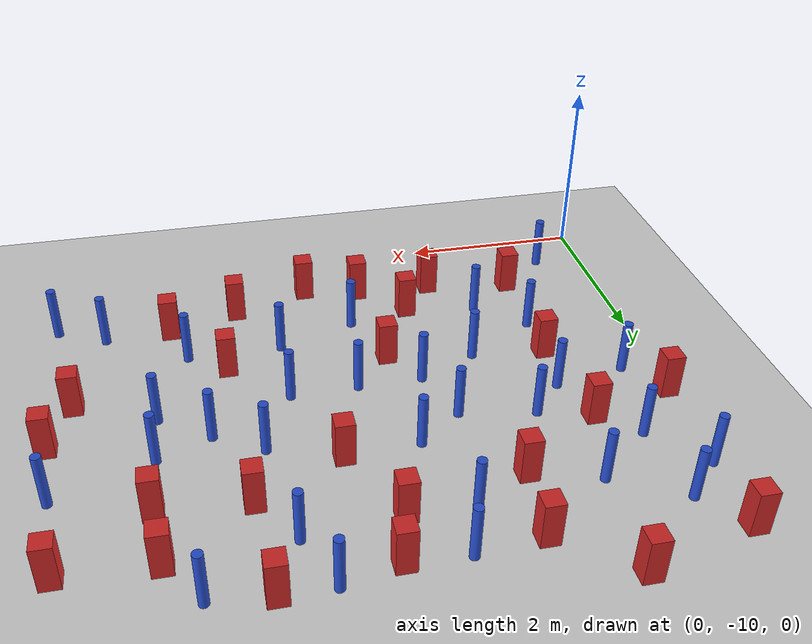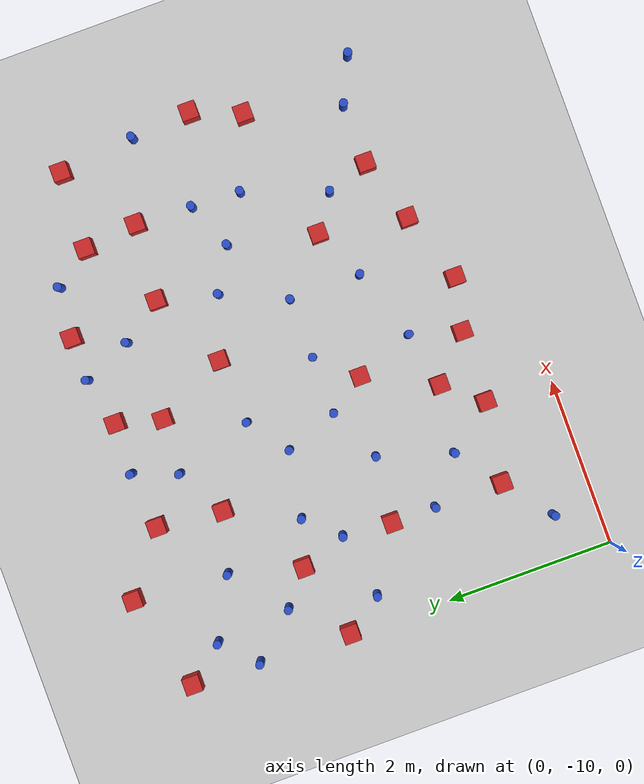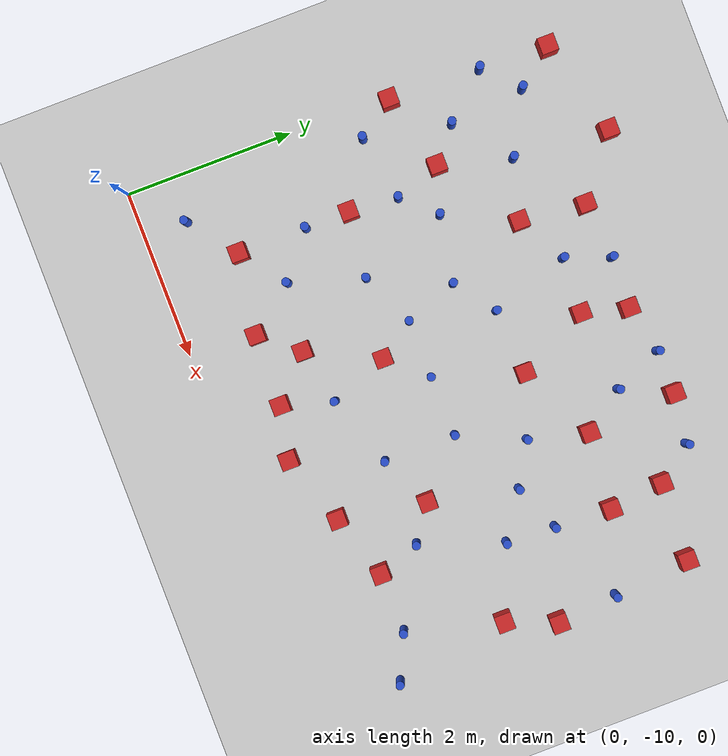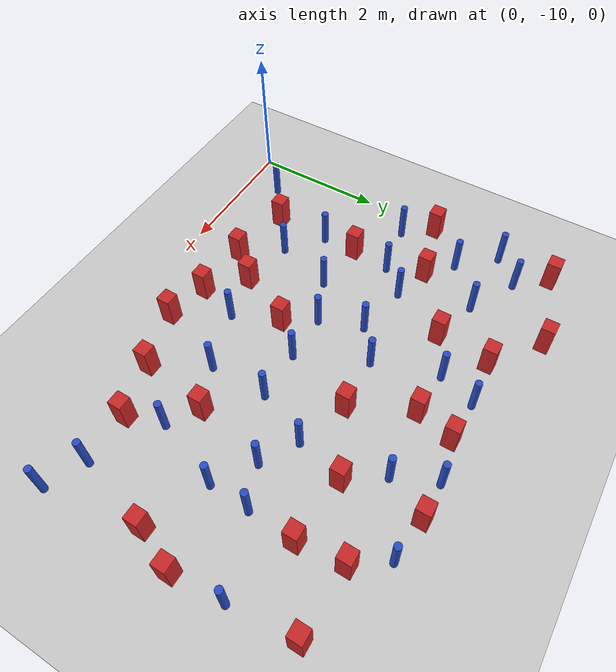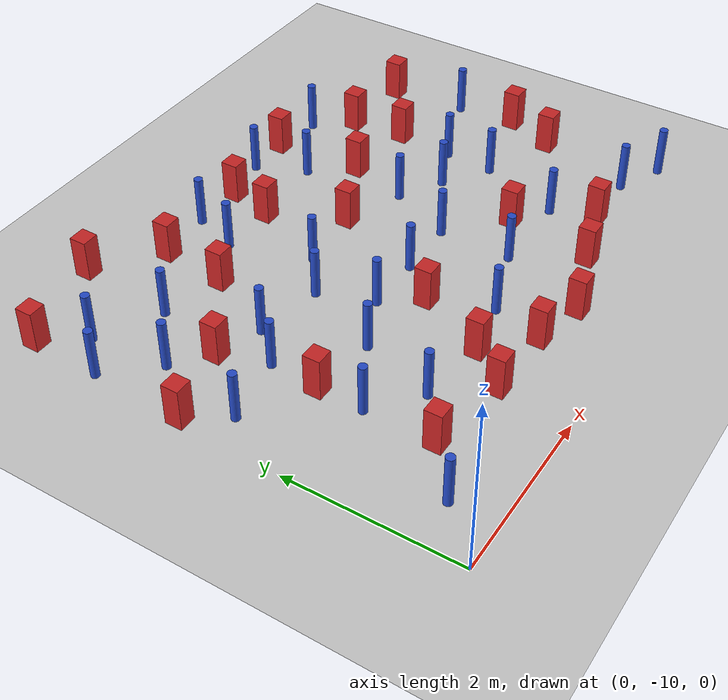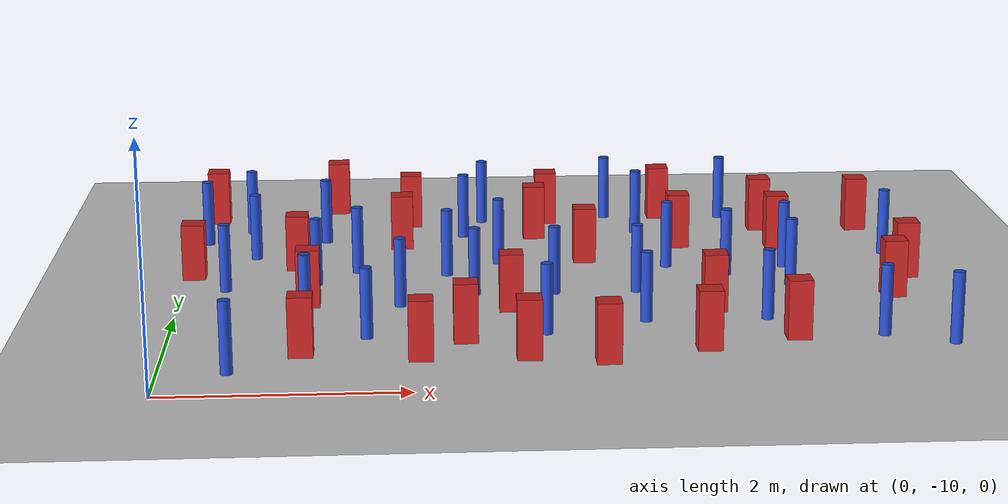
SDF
<sdf version="1.6">
 <world name="default">
  <model name="ground_plane">
   <static>1</static>
   <link name="link">
    <collision name="collision">
     <geometry><plane><normal>0 0 1</normal><size>100 100</size></plane></geometry>
     <surface><friction><ode><mu>100</mu><mu2>50</mu2></ode></friction></surface>
    </collision>
    <visual name="visual">
     <cast_shadows>0</cast_shadows>
     <geometry><plane><normal>0 0 1</normal><size>100 100</size></plane></geometry>
     <material>
      <ambient>1.0 1.0 1.0 1.0</ambient>
      <diffuse>0.8 0.8 0.8 1.0</diffuse>
      <specular>0.01 0.01 0.01 1.000000</specular>
     </material>
    </visual>
   </link>
  </model>
  <model name="pole_obstacle7">
   <static>true</static>
   <pose>3.22150232477 -7.4769451547 7.38925637345e-09 -8.47170692798e-08 1.24976765033e-08 -1.74513093019e-07</pose>
   <link name="link">
    <pose>0 0 0.3 0 -0 0</pose>
    <inertial>
     <mass>1</mass>
     <inertia><ixx>0.145833</ixx><ixy>0</ixy><ixz>0</ixz><iyy>0.145833</iyy><iyz>0</iyz><izz>0.125</izz></inertia>
    </inertial>
    <collision name="collision">
     <geometry><cylinder><radius>0.05</radius><length>.6</length></cylinder></geometry>
    </collision>
    <visual name="visual">
     <geometry><cylinder><radius>0.05</radius><length>.6</length></cylinder></geometry>
     <material>
      <script><name>Gazebo/Blue</name><uri>file://media/materials/scripts/gazebo.material</uri></script>
     </material>
    </visual>
   </link>
  </model>
  <model name="square_post_obstacle5">
   <static>true</static>
   <pose>3.1453970164 -5.60545074428 1.91545236811e-07 -7.35059704564e-06 1.12565212e-07 2.39332434364e-05</pose>
   <link name="link">
    <pose>0 0 0.25 0 -0 0</pose>
    <inertial>
     <mass>100</mass>
     <inertia>
      <ixx>0.166667</ixx>
      <ixy>0</ixy>
      <ixz>0</ixz>
      <iyy>0.166667</iyy>
      <iyz>0</iyz>
      <izz>0.166667</izz>
     </inertia>
    </inertial>
    <collision name="collision"><geometry><box><size>.2 .2 .5</size></box></geometry></collision>
    <visual name="visual">
     <geometry><box><size>.2 .2 .5</size></box></geometry>
     <material>
      <script><name>Gazebo/Red</name><uri>file://media/materials/scripts/gazebo.material</uri></script>
     </material>
    </visual>
   </link>
  </model>
  <model name="square_post_obstacle7">
   <static>true</static>
   <pose>2.4204341195 -8.75031236134 1.91545236811e-07 -7.35059704564e-06 1.12565212e-07 2.39332434364e-05</pose>
   <link name="link">
    <pose>0 0 0.25 0 -0 0</pose>
    <inertial>
     <mass>100</mass>
     <inertia>
      <ixx>0.166667</ixx>
      <ixy>0</ixy>
      <ixz>0</ixz>
      <iyy>0.166667</iyy>
      <iyz>0</iyz>
      <izz>0.166667</izz>
     </inertia>
    </inertial>
    <collision name="collision"><geometry><box><size>.2 .2 .5</size></box></geometry></collision>
    <visual name="visual">
     <geometry><box><size>.2 .2 .5</size></box></geometry>
     <material>
      <script><name>Gazebo/Red</name><uri>file://media/materials/scripts/gazebo.material</uri></script>
     </material>
    </visual>
   </link>
  </model>
  <model name="square_post_obstacle8">
   <static>true</static>
   <pose>6.14715143079 -7.69136076271 1.91545236811e-07 -7.35059704564e-06 1.12565212e-07 2.39332434364e-05</pose>
   <link name="link">
    <pose>0 0 0.25 0 -0 0</pose>
    <inertial>
     <mass>100</mass>
     <inertia>
      <ixx>0.166667</ixx>
      <ixy>0</ixy>
      <ixz>0</ixz>
      <iyy>0.166667</iyy>
      <iyz>0</iyz>
      <izz>0.166667</izz>
     </inertia>
    </inertial>
    <collision name="collision"><geometry><box><size>.2 .2 .5</size></box></geometry></collision>
    <visual name="visual">
     <geometry><box><size>.2 .2 .5</size></box></geometry>
     <material>
      <script><name>Gazebo/Red</name><uri>file://media/materials/scripts/gazebo.material</uri></script>
     </material>
    </visual>
   </link>
  </model>
  <model name="pole_obstacle14">
   <static>true</static>
   <pose>3.93608415349 -8.31823323013 7.38925637345e-09 -8.47170692793e-08 1.24976764408e-08 -1.74513093041e-07</pose>
   <link name="link">
    <pose>0 0 0.3 0 -0 0</pose>
    <inertial>
     <mass>1</mass>
     <inertia><ixx>0.145833</ixx><ixy>0</ixy><ixz>0</ixz><iyy>0.145833</iyy><iyz>0</iyz><izz>0.125</izz></inertia>
    </inertial>
    <collision name="collision">
     <geometry><cylinder><radius>0.05</radius><length>.6</length></cylinder></geometry>
    </collision>
    <visual name="visual">
     <geometry><cylinder><radius>0.05</radius><length>.6</length></cylinder></geometry>
     <material>
      <script><name>Gazebo/Blue</name><uri>file://media/materials/scripts/gazebo.material</uri></script>
     </material>
    </visual>
   </link>
  </model>
  <model name="square_post_obstacle19">
   <static>true</static>
   <pose>1.90659724652 -5.89209735666 1.91545236811e-07 -7.35059704564e-06 1.12565212e-07 2.39332434364e-05</pose>
   <link name="link">
    <pose>0 0 0.25 0 -0 0</pose>
    <inertial>
     <mass>100</mass>
     <inertia>
      <ixx>0.166667</ixx>
      <ixy>0</ixy>
      <ixz>0</ixz>
      <iyy>0.166667</iyy>
      <iyz>0</iyz>
      <izz>0.166667</izz>
     </inertia>
    </inertial>
    <collision name="collision"><geometry><box><size>.2 .2 .5</size></box></geometry></collision>
    <visual name="visual">
     <geometry><box><size>.2 .2 .5</size></box></geometry>
     <material>
      <script><name>Gazebo/Red</name><uri>file://media/materials/scripts/gazebo.material</uri></script>
     </material>
    </visual>
   </link>
  </model>
  <model name="square_post_obstacle21">
   <static>true</static>
   <pose>6.23103900334 -5.47775100667 1.91545236811e-07 -7.35059704564e-06 1.12565212e-07 2.39332434364e-05</pose>
   <link name="link">
    <pose>0 0 0.25 0 -0 0</pose>
    <inertial>
     <mass>100</mass>
     <inertia>
      <ixx>0.166667</ixx>
      <ixy>0</ixy>
      <ixz>0</ixz>
      <iyy>0.166667</iyy>
      <iyz>0</iyz>
      <izz>0.166667</izz>
     </inertia>
    </inertial>
    <collision name="collision"><geometry><box><size>.2 .2 .5</size></box></geometry></collision>
    <visual name="visual">
     <geometry><box><size>.2 .2 .5</size></box></geometry>
     <material>
      <script><name>Gazebo/Red</name><uri>file://media/materials/scripts/gazebo.material</uri></script>
     </material>
    </visual>
   </link>
  </model>
  <model name="square_post_obstacle27">
   <static>true</static>
   <pose>1.10197446139 -9.03624897904 1.91545236811e-07 -7.35059704564e-06 1.12565212e-07 2.39332434364e-05</pose>
   <link name="link">
    <pose>0 0 0.25 0 -0 0</pose>
    <inertial>
     <mass>100</mass>
     <inertia>
      <ixx>0.166667</ixx>
      <ixy>0</ixy>
      <ixz>0</ixz>
      <iyy>0.166667</iyy>
      <iyz>0</iyz>
      <izz>0.166667</izz>
     </inertia>
    </inertial>
    <collision name="collision"><geometry><box><size>.2 .2 .5</size></box></geometry></collision>
    <visual name="visual">
     <geometry><box><size>.2 .2 .5</size></box></geometry>
     <material>
      <script><name>Gazebo/Red</name><uri>file://media/materials/scripts/gazebo.material</uri></script>
     </material>
    </visual>
   </link>
  </model>
  <model name="square_post_obstacle29">
   <static>true</static>
   <pose>5.1266658337 -8.82335839244 1.91545236811e-07 -7.35059704564e-06 1.12565212e-07 2.39332434364e-05</pose>
   <link name="link">
    <pose>0 0 0.25 0 -0 0</pose>
    <inertial>
     <mass>100</mass>
     <inertia>
      <ixx>0.166667</ixx>
      <ixy>0</ixy>
      <ixz>0</ixz>
      <iyy>0.166667</iyy>
      <iyz>0</iyz>
      <izz>0.166667</izz>
     </inertia>
    </inertial>
    <collision name="collision"><geometry><box><size>.2 .2 .5</size></box></geometry></collision>
    <visual name="visual">
     <geometry><box><size>.2 .2 .5</size></box></geometry>
     <material>
      <script><name>Gazebo/Red</name><uri>file://media/materials/scripts/gazebo.material</uri></script>
     </material>
    </visual>
   </link>
  </model>
  <model name="square_post_obstacle36">
   <static>true</static>
   <pose>2.91149031498 -9.20887463234 1.91545236811e-07 -7.35059704564e-06 1.12565212e-07 2.39332434364e-05</pose>
   <link name="link">
    <pose>0 0 0.25 0 -0 0</pose>
    <inertial>
     <mass>100</mass>
     <inertia>
      <ixx>0.166667</ixx>
      <ixy>0</ixy>
      <ixz>0</ixz>
      <iyy>0.166667</iyy>
      <iyz>0</iyz>
      <izz>0.166667</izz>
     </inertia>
    </inertial>
    <collision name="collision"><geometry><box><size>.2 .2 .5</size></box></geometry></collision>
    <visual name="visual">
     <geometry><box><size>.2 .2 .5</size></box></geometry>
     <material>
      <script><name>Gazebo/Red</name><uri>file://media/materials/scripts/gazebo.material</uri></script>
     </material>
    </visual>
   </link>
  </model>
  <model name="pole_obstacle51">
   <static>true</static>
   <pose>1.2014925531 -5.69253445816 7.38925637345e-09 -8.47170692799e-08 1.24976765033e-08 -1.74513093018e-07</pose>
   <link name="link">
    <pose>0 0 0.3 0 -0 0</pose>
    <inertial>
     <mass>1</mass>
     <inertia><ixx>0.145833</ixx><ixy>0</ixy><ixz>0</ixz><iyy>0.145833</iyy><iyz>0</iyz><izz>0.125</izz></inertia>
    </inertial>
    <collision name="collision">
     <geometry><cylinder><radius>0.05</radius><length>.6</length></cylinder></geometry>
    </collision>
    <visual name="visual">
     <geometry><cylinder><radius>0.05</radius><length>.6</length></cylinder></geometry>
     <material>
      <script><name>Gazebo/Blue</name><uri>file://media/materials/scripts/gazebo.material</uri></script>
     </material>
    </visual>
   </link>
  </model>
  <model name="square_post_obstacle42">
   <static>true</static>
   <pose>1.10773407201 -7.68403534709 1.91545236811e-07 -7.35059704564e-06 1.12565212e-07 2.39332434364e-05</pose>
   <link name="link">
    <pose>0 0 0.25 0 -0 0</pose>
    <inertial>
     <mass>100</mass>
     <inertia>
      <ixx>0.166667</ixx>
      <ixy>0</ixy>
      <ixz>0</ixz>
      <iyy>0.166667</iyy>
      <iyz>0</iyz>
      <izz>0.166667</izz>
     </inertia>
    </inertial>
    <collision name="collision"><geometry><box><size>.2 .2 .5</size></box></geometry></collision>
    <visual name="visual">
     <geometry><box><size>.2 .2 .5</size></box></geometry>
     <material>
      <script><name>Gazebo/Red</name><uri>file://media/materials/scripts/gazebo.material</uri></script>
     </material>
    </visual>
   </link>
  </model>
  <model name="pole_obstacle58">
   <static>true</static>
   <pose>1.89139466694 -7.7704782445 7.38925637345e-09 -8.47170692799e-08 1.24976765033e-08 -1.74513093018e-07</pose>
   <link name="link">
    <pose>0 0 0.3 0 -0 0</pose>
    <inertial>
     <mass>1</mass>
     <inertia><ixx>0.145833</ixx><ixy>0</ixy><ixz>0</ixz><iyy>0.145833</iyy><iyz>0</iyz><izz>0.125</izz></inertia>
    </inertial>
    <collision name="collision">
     <geometry><cylinder><radius>0.05</radius><length>.6</length></cylinder></geometry>
    </collision>
    <visual name="visual">
     <geometry><cylinder><radius>0.05</radius><length>.6</length></cylinder></geometry>
     <material>
      <script><name>Gazebo/Blue</name><uri>file://media/materials/scripts/gazebo.material</uri></script>
     </material>
    </visual>
   </link>
  </model>
  <model name="square_post_obstacle48">
   <static>true</static>
   <pose>3.55897779533 -6.44860546713 1.91545236811e-07 -7.35059704564e-06 1.12565212e-07 2.39332434364e-05</pose>
   <link name="link">
    <pose>0 0 0.25 0 -0 0</pose>
    <inertial>
     <mass>100</mass>
     <inertia>
      <ixx>0.166667</ixx>
      <ixy>0</ixy>
      <ixz>0</ixz>
      <iyy>0.166667</iyy>
      <iyz>0</iyz>
      <izz>0.166667</izz>
     </inertia>
    </inertial>
    <collision name="collision"><geometry><box><size>.2 .2 .5</size></box></geometry></collision>
    <visual name="visual">
     <geometry><box><size>.2 .2 .5</size></box></geometry>
     <material>
      <script><name>Gazebo/Red</name><uri>file://media/materials/scripts/gazebo.material</uri></script>
     </material>
    </visual>
   </link>
  </model>
  <model name="square_post_obstacle58">
   <static>true</static>
   <pose>2.05472331848 -9.18506082507 1.91545236811e-07 -7.35059704564e-06 1.12565212e-07 2.39332434364e-05</pose>
   <link name="link">
    <pose>0 0 0.25 0 -0 0</pose>
    <inertial>
     <mass>100</mass>
     <inertia>
      <ixx>0.166667</ixx>
      <ixy>0</ixy>
      <ixz>0</ixz>
      <iyy>0.166667</iyy>
      <iyz>0</iyz>
      <izz>0.166667</izz>
     </inertia>
    </inertial>
    <collision name="collision"><geometry><box><size>.2 .2 .5</size></box></geometry></collision>
    <visual name="visual">
     <geometry><box><size>.2 .2 .5</size></box></geometry>
     <material>
      <script><name>Gazebo/Red</name><uri>file://media/materials/scripts/gazebo.material</uri></script>
     </material>
    </visual>
   </link>
  </model>
  <model name="square_post_obstacle73">
   <static>true</static>
   <pose>6.38053899687 -7.10698713867 1.91545236811e-07 -7.35059704564e-06 1.12565212e-07 2.39332434364e-05</pose>
   <link name="link">
    <pose>0 0 0.25 0 -0 0</pose>
    <inertial>
     <mass>100</mass>
     <inertia>
      <ixx>0.166667</ixx>
      <ixy>0</ixy>
      <ixz>0</ixz>
      <iyy>0.166667</iyy>
      <iyz>0</iyz>
      <izz>0.166667</izz>
     </inertia>
    </inertial>
    <collision name="collision"><geometry><box><size>.2 .2 .5</size></box></geometry></collision>
    <visual name="visual">
     <geometry><box><size>.2 .2 .5</size></box></geometry>
     <material>
      <script><name>Gazebo/Red</name><uri>file://media/materials/scripts/gazebo.material</uri></script>
     </material>
    </visual>
   </link>
  </model>
  <model name="pole_obstacle86">
   <static>true</static>
   <pose>5.33952448104 -6.75982605139 7.38925637345e-09 -8.47170692796e-08 1.24976764786e-08 -1.74513093032e-07</pose>
   <link name="link">
    <pose>0 0 0.3 0 -0 0</pose>
    <inertial>
     <mass>1</mass>
     <inertia><ixx>0.145833</ixx><ixy>0</ixy><ixz>0</ixz><iyy>0.145833</iyy><iyz>0</iyz><izz>0.125</izz></inertia>
    </inertial>
    <collision name="collision">
     <geometry><cylinder><radius>0.05</radius><length>.6</length></cylinder></geometry>
    </collision>
    <visual name="visual">
     <geometry><cylinder><radius>0.05</radius><length>.6</length></cylinder></geometry>
     <material>
      <script><name>Gazebo/Blue</name><uri>file://media/materials/scripts/gazebo.material</uri></script>
     </material>
    </visual>
   </link>
  </model>
  <model name="square_post_obstacle74">
   <static>true</static>
   <pose>1.99338762028 -5.10920825828 1.91545236811e-07 -7.35059704564e-06 1.12565212e-07 2.39332434364e-05</pose>
   <link name="link">
    <pose>0 0 0.25 0 -0 0</pose>
    <inertial>
     <mass>100</mass>
     <inertia>
      <ixx>0.166667</ixx>
      <ixy>0</ixy>
      <ixz>0</ixz>
      <iyy>0.166667</iyy>
      <iyz>0</iyz>
      <izz>0.166667</izz>
     </inertia>
    </inertial>
    <collision name="collision"><geometry><box><size>.2 .2 .5</size></box></geometry></collision>
    <visual name="visual">
     <geometry><box><size>.2 .2 .5</size></box></geometry>
     <material>
      <script><name>Gazebo/Red</name><uri>file://media/materials/scripts/gazebo.material</uri></script>
     </material>
    </visual>
   </link>
  </model>
  <model name="pole_obstacle87">
   <static>true</static>
   <pose>3.86860398969 -4.93310898947 7.38925637345e-09 -8.47170692798e-08 1.24976765033e-08 -1.74513093019e-07</pose>
   <link name="link">
    <pose>0 0 0.3 0 -0 0</pose>
    <inertial>
     <mass>1</mass>
     <inertia><ixx>0.145833</ixx><ixy>0</ixy><ixz>0</ixz><iyy>0.145833</iyy><iyz>0</iyz><izz>0.125</izz></inertia>
    </inertial>
    <collision name="collision">
     <geometry><cylinder><radius>0.05</radius><length>.6</length></cylinder></geometry>
    </collision>
    <visual name="visual">
     <geometry><cylinder><radius>0.05</radius><length>.6</length></cylinder></geometry>
     <material>
      <script><name>Gazebo/Blue</name><uri>file://media/materials/scripts/gazebo.material</uri></script>
     </material>
    </visual>
   </link>
  </model>
  <model name="square_post_obstacle76">
   <static>true</static>
   <pose>4.36586534339 -9.06294899991 1.91545236811e-07 -7.35059704564e-06 1.12565212e-07 2.39332434364e-05</pose>
   <link name="link">
    <pose>0 0 0.25 0 -0 0</pose>
    <inertial>
     <mass>100</mass>
     <inertia>
      <ixx>0.166667</ixx>
      <ixy>0</ixy>
      <ixz>0</ixz>
      <iyy>0.166667</iyy>
      <iyz>0</iyz>
      <izz>0.166667</izz>
     </inertia>
    </inertial>
    <collision name="collision"><geometry><box><size>.2 .2 .5</size></box></geometry></collision>
    <visual name="visual">
     <geometry><box><size>.2 .2 .5</size></box></geometry>
     <material>
      <script><name>Gazebo/Red</name><uri>file://media/materials/scripts/gazebo.material</uri></script>
     </material>
    </visual>
   </link>
  </model>
  <model name="square_post_obstacle84">
   <static>true</static>
   <pose>4.46515629286 -6.00393810836 1.91545236811e-07 -7.35059704564e-06 1.12565212e-07 2.39332434364e-05</pose>
   <link name="link">
    <pose>0 0 0.25 0 -0 0</pose>
    <inertial>
     <mass>100</mass>
     <inertia>
      <ixx>0.166667</ixx>
      <ixy>0</ixy>
      <ixz>0</ixz>
      <iyy>0.166667</iyy>
      <iyz>0</iyz>
      <izz>0.166667</izz>
     </inertia>
    </inertial>
    <collision name="collision"><geometry><box><size>.2 .2 .5</size></box></geometry></collision>
    <visual name="visual">
     <geometry><box><size>.2 .2 .5</size></box></geometry>
     <material>
      <script><name>Gazebo/Red</name><uri>file://media/materials/scripts/gazebo.material</uri></script>
     </material>
    </visual>
   </link>
  </model>
  <model name="pole_obstacle98">
   <static>true</static>
   <pose>4.28411899778 -6.7007746295 7.38925637345e-09 -8.47170692796e-08 1.24976764786e-08 -1.74513093032e-07</pose>
   <link name="link">
    <pose>0 0 0.3 0 -0 0</pose>
    <inertial>
     <mass>1</mass>
     <inertia><ixx>0.145833</ixx><ixy>0</ixy><ixz>0</ixz><iyy>0.145833</iyy><iyz>0</iyz><izz>0.125</izz></inertia>
    </inertial>
    <collision name="collision">
     <geometry><cylinder><radius>0.05</radius><length>.6</length></cylinder></geometry>
    </collision>
    <visual name="visual">
     <geometry><cylinder><radius>0.05</radius><length>.6</length></cylinder></geometry>
     <material>
      <script><name>Gazebo/Blue</name><uri>file://media/materials/scripts/gazebo.material</uri></script>
     </material>
    </visual>
   </link>
  </model>
  <model name="square_post_obstacle92">
   <static>true</static>
   <pose>5.37465435075 -6.08280300153 1.91545236811e-07 -7.35059704564e-06 1.12565212e-07 2.39332434364e-05</pose>
   <link name="link">
    <pose>0 0 0.25 0 -0 0</pose>
    <inertial>
     <mass>100</mass>
     <inertia>
      <ixx>0.166667</ixx>
      <ixy>0</ixy>
      <ixz>0</ixz>
      <iyy>0.166667</iyy>
      <iyz>0</iyz>
      <izz>0.166667</izz>
     </inertia>
    </inertial>
    <collision name="collision"><geometry><box><size>.2 .2 .5</size></box></geometry></collision>
    <visual name="visual">
     <geometry><box><size>.2 .2 .5</size></box></geometry>
     <material>
      <script><name>Gazebo/Red</name><uri>file://media/materials/scripts/gazebo.material</uri></script>
     </material>
    </visual>
   </link>
  </model>
  <model name="pole_obstacle101">
   <static>true</static>
   <pose>2.67383488345 -5.03966563027 7.38925637345e-09 -8.47170692798e-08 1.24976765033e-08 -1.74513093019e-07</pose>
   <link name="link">
    <pose>0 0 0.3 0 -0 0</pose>
    <inertial>
     <mass>1</mass>
     <inertia><ixx>0.145833</ixx><ixy>0</ixy><ixz>0</ixz><iyy>0.145833</iyy><iyz>0</iyz><izz>0.125</izz></inertia>
    </inertial>
    <collision name="collision">
     <geometry><cylinder><radius>0.05</radius><length>.6</length></cylinder></geometry>
    </collision>
    <visual name="visual">
     <geometry><cylinder><radius>0.05</radius><length>.6</length></cylinder></geometry>
     <material>
      <script><name>Gazebo/Blue</name><uri>file://media/materials/scripts/gazebo.material</uri></script>
     </material>
    </visual>
   </link>
  </model>
  <model name="square_post_obstacle98">
   <static>true</static>
   <pose>0.97011975441 -6.54683266928 1.91545236811e-07 -7.35059704564e-06 1.12565212e-07 2.39332434364e-05</pose>
   <link name="link">
    <pose>0 0 0.25 0 -0 0</pose>
    <inertial>
     <mass>100</mass>
     <inertia>
      <ixx>0.166667</ixx>
      <ixy>0</ixy>
      <ixz>0</ixz>
      <iyy>0.166667</iyy>
      <iyz>0</iyz>
      <izz>0.166667</izz>
     </inertia>
    </inertial>
    <collision name="collision"><geometry><box><size>.2 .2 .5</size></box></geometry></collision>
    <visual name="visual">
     <geometry><box><size>.2 .2 .5</size></box></geometry>
     <material>
      <script><name>Gazebo/Red</name><uri>file://media/materials/scripts/gazebo.material</uri></script>
     </material>
    </visual>
   </link>
  </model>
  <model name="pole_obstacle104">
   <static>true</static>
   <pose>2.53005761738 -7.4826832355 7.38925637345e-09 -8.47170692798e-08 1.24976765033e-08 -1.74513093019e-07</pose>
   <link name="link">
    <pose>0 0 0.3 0 -0 0</pose>
    <inertial>
     <mass>1</mass>
     <inertia><ixx>0.145833</ixx><ixy>0</ixy><ixz>0</ixz><iyy>0.145833</iyy><iyz>0</iyz><izz>0.125</izz></inertia>
    </inertial>
    <collision name="collision">
     <geometry><cylinder><radius>0.05</radius><length>.6</length></cylinder></geometry>
    </collision>
    <visual name="visual">
     <geometry><cylinder><radius>0.05</radius><length>.6</length></cylinder></geometry>
     <material>
      <script><name>Gazebo/Blue</name><uri>file://media/materials/scripts/gazebo.material</uri></script>
     </material>
    </visual>
   </link>
  </model>
  <model name="pole_obstacle111">
   <static>true</static>
   <pose>5.31007476936 -7.34636833657 7.38925637345e-09 -8.47170692796e-08 1.24976764786e-08 -1.74513093032e-07</pose>
   <link name="link">
    <pose>0 0 0.3 0 -0 0</pose>
    <inertial>
     <mass>1</mass>
     <inertia><ixx>0.145833</ixx><ixy>0</ixy><ixz>0</ixz><iyy>0.145833</iyy><iyz>0</iyz><izz>0.125</izz></inertia>
    </inertial>
    <collision name="collision">
     <geometry><cylinder><radius>0.05</radius><length>.6</length></cylinder></geometry>
    </collision>
    <visual name="visual">
     <geometry><cylinder><radius>0.05</radius><length>.6</length></cylinder></geometry>
     <material>
      <script><name>Gazebo/Blue</name><uri>file://media/materials/scripts/gazebo.material</uri></script>
     </material>
    </visual>
   </link>
  </model>
  <model name="pole_obstacle122">
   <static>true</static>
   <pose>6.32603078409 -6.38709073287 7.38925637345e-09 -8.47170692796e-08 1.24976764786e-08 -1.74513093032e-07</pose>
   <link name="link">
    <pose>0 0 0.3 0 -0 0</pose>
    <inertial>
     <mass>1</mass>
     <inertia><ixx>0.145833</ixx><ixy>0</ixy><ixz>0</ixz><iyy>0.145833</iyy><iyz>0</iyz><izz>0.125</izz></inertia>
    </inertial>
    <collision name="collision">
     <geometry><cylinder><radius>0.05</radius><length>.6</length></cylinder></geometry>
    </collision>
    <visual name="visual">
     <geometry><cylinder><radius>0.05</radius><length>.6</length></cylinder></geometry>
     <material>
      <script><name>Gazebo/Blue</name><uri>file://media/materials/scripts/gazebo.material</uri></script>
     </material>
    </visual>
   </link>
  </model>
  <model name="pole_obstacle127">
   <static>true</static>
   <pose>2.77607070131 -6.50180046961 7.38925637345e-09 -8.47170692798e-08 1.24976765033e-08 -1.74513093019e-07</pose>
   <link name="link">
    <pose>0 0 0.3 0 -0 0</pose>
    <inertial>
     <mass>1</mass>
     <inertia><ixx>0.145833</ixx><ixy>0</ixy><ixz>0</ixz><iyy>0.145833</iyy><iyz>0</iyz><izz>0.125</izz></inertia>
    </inertial>
    <collision name="collision">
     <geometry><cylinder><radius>0.05</radius><length>.6</length></cylinder></geometry>
    </collision>
    <visual name="visual">
     <geometry><cylinder><radius>0.05</radius><length>.6</length></cylinder></geometry>
     <material>
      <script><name>Gazebo/Blue</name><uri>file://media/materials/scripts/gazebo.material</uri></script>
     </material>
    </visual>
   </link>
  </model>
  <model name="square_post_obstacle130">
   <static>true</static>
   <pose>5.30758098268 -5.43641401174 1.91545236811e-07 -7.35059704564e-06 1.12565212e-07 2.39332434364e-05</pose>
   <link name="link">
    <pose>0 0 0.25 0 -0 0</pose>
    <inertial>
     <mass>100</mass>
     <inertia>
      <ixx>0.166667</ixx>
      <ixy>0</ixy>
      <ixz>0</ixz>
      <iyy>0.166667</iyy>
      <iyz>0</iyz>
      <izz>0.166667</izz>
     </inertia>
    </inertial>
    <collision name="collision"><geometry><box><size>.2 .2 .5</size></box></geometry></collision>
    <visual name="visual">
     <geometry><box><size>.2 .2 .5</size></box></geometry>
     <material>
      <script><name>Gazebo/Red</name><uri>file://media/materials/scripts/gazebo.material</uri></script>
     </material>
    </visual>
   </link>
  </model>
  <model name="square_post_obstacle132">
   <static>true</static>
   <pose>0.0677655520172 -6.79392266435 1.91545236811e-07 -7.35059704564e-06 1.12565212e-07 2.39332434364e-05</pose>
   <link name="link">
    <pose>0 0 0.25 0 -0 0</pose>
    <inertial>
     <mass>100</mass>
     <inertia>
      <ixx>0.166667</ixx>
      <ixy>0</ixy>
      <ixz>0</ixz>
      <iyy>0.166667</iyy>
      <iyz>0</iyz>
      <izz>0.166667</izz>
     </inertia>
    </inertial>
    <collision name="collision"><geometry><box><size>.2 .2 .5</size></box></geometry></collision>
    <visual name="visual">
     <geometry><box><size>.2 .2 .5</size></box></geometry>
     <material>
      <script><name>Gazebo/Red</name><uri>file://media/materials/scripts/gazebo.material</uri></script>
     </material>
    </visual>
   </link>
  </model>
  <model name="pole_obstacle133">
   <static>true</static>
   <pose>0.580041480333 -6.21644432047 7.38925637345e-09 -8.471706928e-08 1.24976765086e-08 -1.74513093015e-07</pose>
   <link name="link">
    <pose>0 0 0.3 0 -0 0</pose>
    <inertial>
     <mass>1</mass>
     <inertia><ixx>0.145833</ixx><ixy>0</ixy><ixz>0</ixz><iyy>0.145833</iyy><iyz>0</iyz><izz>0.125</izz></inertia>
    </inertial>
    <collision name="collision">
     <geometry><cylinder><radius>0.05</radius><length>.6</length></cylinder></geometry>
    </collision>
    <visual name="visual">
     <geometry><cylinder><radius>0.05</radius><length>.6</length></cylinder></geometry>
     <material>
      <script><name>Gazebo/Blue</name><uri>file://media/materials/scripts/gazebo.material</uri></script>
     </material>
    </visual>
   </link>
  </model>
  <model name="pole_obstacle137">
   <static>true</static>
   <pose>0.37330045939 -7.23284706584 7.38925637345e-09 -8.471706928e-08 1.24976765079e-08 -1.74513093015e-07</pose>
   <link name="link">
    <pose>0 0 0.3 0 -0 0</pose>
    <inertial>
     <mass>1</mass>
     <inertia><ixx>0.145833</ixx><ixy>0</ixy><ixz>0</ixz><iyy>0.145833</iyy><iyz>0</iyz><izz>0.125</izz></inertia>
    </inertial>
    <collision name="collision">
     <geometry><cylinder><radius>0.05</radius><length>.6</length></cylinder></geometry>
    </collision>
    <visual name="visual">
     <geometry><cylinder><radius>0.05</radius><length>.6</length></cylinder></geometry>
     <material>
      <script><name>Gazebo/Blue</name><uri>file://media/materials/scripts/gazebo.material</uri></script>
     </material>
    </visual>
   </link>
  </model>
  <model name="pole_obstacle142">
   <static>true</static>
   <pose>5.84503327211 -8.8150768171 7.38925637345e-09 -8.471706928e-08 1.24976765081e-08 -1.74513093015e-07</pose>
   <link name="link">
    <pose>0 0 0.3 0 -0 0</pose>
    <inertial>
     <mass>1</mass>
     <inertia><ixx>0.145833</ixx><ixy>0</ixy><ixz>0</ixz><iyy>0.145833</iyy><iyz>0</iyz><izz>0.125</izz></inertia>
    </inertial>
    <collision name="collision">
     <geometry><cylinder><radius>0.05</radius><length>.6</length></cylinder></geometry>
    </collision>
    <visual name="visual">
     <geometry><cylinder><radius>0.05</radius><length>.6</length></cylinder></geometry>
     <material>
      <script><name>Gazebo/Blue</name><uri>file://media/materials/scripts/gazebo.material</uri></script>
     </material>
    </visual>
   </link>
  </model>
  <model name="pole_obstacle149">
   <static>true</static>
   <pose>1.51107804057 -6.71556633661 7.38925637345e-09 -8.47170692799e-08 1.24976765033e-08 -1.74513093018e-07</pose>
   <link name="link">
    <pose>0 0 0.3 0 -0 0</pose>
    <inertial>
     <mass>1</mass>
     <inertia><ixx>0.145833</ixx><ixy>0</ixy><ixz>0</ixz><iyy>0.145833</iyy><iyz>0</iyz><izz>0.125</izz></inertia>
    </inertial>
    <collision name="collision">
     <geometry><cylinder><radius>0.05</radius><length>.6</length></cylinder></geometry>
    </collision>
    <visual name="visual">
     <geometry><cylinder><radius>0.05</radius><length>.6</length></cylinder></geometry>
     <material>
      <script><name>Gazebo/Blue</name><uri>file://media/materials/scripts/gazebo.material</uri></script>
     </material>
    </visual>
   </link>
  </model>
  <model name="square_post_obstacle149">
   <static>true</static>
   <pose>1.29013576742 -4.56256453497 1.91545236811e-07 -7.35059704564e-06 1.12565212e-07 2.39332434364e-05</pose>
   <link name="link">
    <pose>0 0 0.25 0 -0 0</pose>
    <inertial>
     <mass>100</mass>
     <inertia>
      <ixx>0.166667</ixx>
      <ixy>0</ixy>
      <ixz>0</ixz>
      <iyy>0.166667</iyy>
      <iyz>0</iyz>
      <izz>0.166667</izz>
     </inertia>
    </inertial>
    <collision name="collision"><geometry><box><size>.2 .2 .5</size></box></geometry></collision>
    <visual name="visual">
     <geometry><box><size>.2 .2 .5</size></box></geometry>
     <material>
      <script><name>Gazebo/Red</name><uri>file://media/materials/scripts/gazebo.material</uri></script>
     </material>
    </visual>
   </link>
  </model>
  <model name="pole_obstacle160">
   <static>true</static>
   <pose>6.37605063291 -9.0611513073 7.38925637345e-09 -8.471706928e-08 1.24976765081e-08 -1.74513093015e-07</pose>
   <link name="link">
    <pose>0 0 0.3 0 -0 0</pose>
    <inertial>
     <mass>1</mass>
     <inertia><ixx>0.145833</ixx><ixy>0</ixy><ixz>0</ixz><iyy>0.145833</iyy><iyz>0</iyz><izz>0.125</izz></inertia>
    </inertial>
    <collision name="collision">
     <geometry><cylinder><radius>0.05</radius><length>.6</length></cylinder></geometry>
    </collision>
    <visual name="visual">
     <geometry><cylinder><radius>0.05</radius><length>.6</length></cylinder></geometry>
     <material>
      <script><name>Gazebo/Blue</name><uri>file://media/materials/scripts/gazebo.material</uri></script>
     </material>
    </visual>
   </link>
  </model>
  <model name="pole_obstacle164">
   <static>true</static>
   <pose>2.30450968885 -6.85587486006 7.38925637345e-09 -8.47170692798e-08 1.24976765033e-08 -1.74513093019e-07</pose>
   <link name="link">
    <pose>0 0 0.3 0 -0 0</pose>
    <inertial>
     <mass>1</mass>
     <inertia><ixx>0.145833</ixx><ixy>0</ixy><ixz>0</ixz><iyy>0.145833</iyy><iyz>0</iyz><izz>0.125</izz></inertia>
    </inertial>
    <collision name="collision">
     <geometry><cylinder><radius>0.05</radius><length>.6</length></cylinder></geometry>
    </collision>
    <visual name="visual">
     <geometry><cylinder><radius>0.05</radius><length>.6</length></cylinder></geometry>
     <material>
      <script><name>Gazebo/Blue</name><uri>file://media/materials/scripts/gazebo.material</uri></script>
     </material>
    </visual>
   </link>
  </model>
  <model name="square_post_obstacle155">
   <static>true</static>
   <pose>0.143409379006 -4.87568229305 1.91545236811e-07 -7.35059704564e-06 1.12565212e-07 2.39332434364e-05</pose>
   <link name="link">
    <pose>0 0 0.25 0 -0 0</pose>
    <inertial>
     <mass>100</mass>
     <inertia>
      <ixx>0.166667</ixx>
      <ixy>0</ixy>
      <ixz>0</ixz>
      <iyy>0.166667</iyy>
      <iyz>0</iyz>
      <izz>0.166667</izz>
     </inertia>
    </inertial>
    <collision name="collision"><geometry><box><size>.2 .2 .5</size></box></geometry></collision>
    <visual name="visual">
     <geometry><box><size>.2 .2 .5</size></box></geometry>
     <material>
      <script><name>Gazebo/Red</name><uri>file://media/materials/scripts/gazebo.material</uri></script>
     </material>
    </visual>
   </link>
  </model>
  <model name="pole_obstacle171">
   <static>true</static>
   <pose>0.105049981119 -5.69376751825 7.38925637345e-09 -8.47170692799e-08 1.24976765062e-08 -1.74513093018e-07</pose>
   <link name="link">
    <pose>0 0 0.3 0 -0 0</pose>
    <inertial>
     <mass>1</mass>
     <inertia><ixx>0.145833</ixx><ixy>0</ixy><ixz>0</ixz><iyy>0.145833</iyy><iyz>0</iyz><izz>0.125</izz></inertia>
    </inertial>
    <collision name="collision">
     <geometry><cylinder><radius>0.05</radius><length>.6</length></cylinder></geometry>
    </collision>
    <visual name="visual">
     <geometry><cylinder><radius>0.05</radius><length>.6</length></cylinder></geometry>
     <material>
      <script><name>Gazebo/Blue</name><uri>file://media/materials/scripts/gazebo.material</uri></script>
     </material>
    </visual>
   </link>
  </model>
  <model name="square_post_obstacle181">
   <static>true</static>
   <pose>3.28679829384 -5.06848980951 1.91545236811e-07 -7.35059704564e-06 1.12565212e-07 2.39332434364e-05</pose>
   <link name="link">
    <pose>0 0 0.25 0 -0 0</pose>
    <inertial>
     <mass>100</mass>
     <inertia>
      <ixx>0.166667</ixx>
      <ixy>0</ixy>
      <ixz>0</ixz>
      <iyy>0.166667</iyy>
      <iyz>0</iyz>
      <izz>0.166667</izz>
     </inertia>
    </inertial>
    <collision name="collision"><geometry><box><size>.2 .2 .5</size></box></geometry></collision>
    <visual name="visual">
     <geometry><box><size>.2 .2 .5</size></box></geometry>
     <material>
      <script><name>Gazebo/Red</name><uri>file://media/materials/scripts/gazebo.material</uri></script>
     </material>
    </visual>
   </link>
  </model>
  <model name="square_post_obstacle183">
   <static>true</static>
   <pose>3.53142052241 -9.34410443406 1.91545236811e-07 -7.35059704564e-06 1.12565212e-07 2.39332434364e-05</pose>
   <link name="link">
    <pose>0 0 0.25 0 -0 0</pose>
    <inertial>
     <mass>100</mass>
     <inertia>
      <ixx>0.166667</ixx>
      <ixy>0</ixy>
      <ixz>0</ixz>
      <iyy>0.166667</iyy>
      <iyz>0</iyz>
      <izz>0.166667</izz>
     </inertia>
    </inertial>
    <collision name="collision"><geometry><box><size>.2 .2 .5</size></box></geometry></collision>
    <visual name="visual">
     <geometry><box><size>.2 .2 .5</size></box></geometry>
     <material>
      <script><name>Gazebo/Red</name><uri>file://media/materials/scripts/gazebo.material</uri></script>
     </material>
    </visual>
   </link>
  </model>
  <model name="square_post_obstacle195">
   <static>true</static>
   <pose>4.38927844233 -4.93368323243 1.91545236811e-07 -7.35059704564e-06 1.12565212e-07 2.39332434364e-05</pose>
   <link name="link">
    <pose>0 0 0.25 0 -0 0</pose>
    <inertial>
     <mass>100</mass>
     <inertia>
      <ixx>0.166667</ixx>
      <ixy>0</ixy>
      <ixz>0</ixz>
      <iyy>0.166667</iyy>
      <iyz>0</iyz>
      <izz>0.166667</izz>
     </inertia>
    </inertial>
    <collision name="collision"><geometry><box><size>.2 .2 .5</size></box></geometry></collision>
    <visual name="visual">
     <geometry><box><size>.2 .2 .5</size></box></geometry>
     <material>
      <script><name>Gazebo/Red</name><uri>file://media/materials/scripts/gazebo.material</uri></script>
     </material>
    </visual>
   </link>
  </model>
  <model name="square_post_obstacle196">
   <static>true</static>
   <pose>2.82677124849 -7.91680951518 1.91545236811e-07 -7.35059704564e-06 1.12565212e-07 2.39332434364e-05</pose>
   <link name="link">
    <pose>0 0 0.25 0 -0 0</pose>
    <inertial>
     <mass>100</mass>
     <inertia>
      <ixx>0.166667</ixx>
      <ixy>0</ixy>
      <ixz>0</ixz>
      <iyy>0.166667</iyy>
      <iyz>0</iyz>
      <izz>0.166667</izz>
     </inertia>
    </inertial>
    <collision name="collision"><geometry><box><size>.2 .2 .5</size></box></geometry></collision>
    <visual name="visual">
     <geometry><box><size>.2 .2 .5</size></box></geometry>
     <material>
      <script><name>Gazebo/Red</name><uri>file://media/materials/scripts/gazebo.material</uri></script>
     </material>
    </visual>
   </link>
  </model>
  <model name="pole_obstacle188">
   <static>true</static>
   <pose>4.95674866089 -8.31967707346 7.38925637345e-09 -8.471706928e-08 1.24976765081e-08 -1.74513093015e-07</pose>
   <link name="link">
    <pose>0 0 0.3 0 -0 0</pose>
    <inertial>
     <mass>1</mass>
     <inertia><ixx>0.145833</ixx><ixy>0</ixy><ixz>0</ixz><iyy>0.145833</iyy><iyz>0</iyz><izz>0.125</izz></inertia>
    </inertial>
    <collision name="collision">
     <geometry><cylinder><radius>0.05</radius><length>.6</length></cylinder></geometry>
    </collision>
    <visual name="visual">
     <geometry><cylinder><radius>0.05</radius><length>.6</length></cylinder></geometry>
     <material>
      <script><name>Gazebo/Blue</name><uri>file://media/materials/scripts/gazebo.material</uri></script>
     </material>
    </visual>
   </link>
  </model>
  <model name="pole_obstacle189">
   <static>true</static>
   <pose>4.1197477434 -5.51189733754 7.38925637345e-09 -8.47170692796e-08 1.24976764786e-08 -1.74513093032e-07</pose>
   <link name="link">
    <pose>0 0 0.3 0 -0 0</pose>
    <inertial>
     <mass>1</mass>
     <inertia><ixx>0.145833</ixx><ixy>0</ixy><ixz>0</ixz><iyy>0.145833</iyy><iyz>0</iyz><izz>0.125</izz></inertia>
    </inertial>
    <collision name="collision">
     <geometry><cylinder><radius>0.05</radius><length>.6</length></cylinder></geometry>
    </collision>
    <visual name="visual">
     <geometry><cylinder><radius>0.05</radius><length>.6</length></cylinder></geometry>
     <material>
      <script><name>Gazebo/Blue</name><uri>file://media/materials/scripts/gazebo.material</uri></script>
     </material>
    </visual>
   </link>
  </model>
  <model name="square_post_obstacle199">
   <static>true</static>
   <pose>4.54660609873 -8.02949523056 1.91545236811e-07 -7.35059704564e-06 1.12565212e-07 2.39332434364e-05</pose>
   <link name="link">
    <pose>0 0 0.25 0 -0 0</pose>
    <inertial>
     <mass>100</mass>
     <inertia>
      <ixx>0.166667</ixx>
      <ixy>0</ixy>
      <ixz>0</ixz>
      <iyy>0.166667</iyy>
      <iyz>0</iyz>
      <izz>0.166667</izz>
     </inertia>
    </inertial>
    <collision name="collision"><geometry><box><size>.2 .2 .5</size></box></geometry></collision>
    <visual name="visual">
     <geometry><box><size>.2 .2 .5</size></box></geometry>
     <material>
      <script><name>Gazebo/Red</name><uri>file://media/materials/scripts/gazebo.material</uri></script>
     </material>
    </visual>
   </link>
  </model>
  <model name="pole_obstacle192">
   <static>true</static>
   <pose>3.08781866098 -8.61095591165 7.38925637345e-09 -8.47170692793e-08 1.24976764408e-08 -1.74513093041e-07</pose>
   <link name="link">
    <pose>0 0 0.3 0 -0 0</pose>
    <inertial>
     <mass>1</mass>
     <inertia><ixx>0.145833</ixx><ixy>0</ixy><ixz>0</ixz><iyy>0.145833</iyy><iyz>0</iyz><izz>0.125</izz></inertia>
    </inertial>
    <collision name="collision">
     <geometry><cylinder><radius>0.05</radius><length>.6</length></cylinder></geometry>
    </collision>
    <visual name="visual">
     <geometry><cylinder><radius>0.05</radius><length>.6</length></cylinder></geometry>
     <material>
      <script><name>Gazebo/Blue</name><uri>file://media/materials/scripts/gazebo.material</uri></script>
     </material>
    </visual>
   </link>
  </model>
  <model name="pole_obstacle197">
   <static>true</static>
   <pose>3.94111174941 -7.46074949636 7.38925637345e-09 -8.47170692798e-08 1.24976765033e-08 -1.74513093019e-07</pose>
   <link name="link">
    <pose>0 0 0.3 0 -0 0</pose>
    <inertial>
     <mass>1</mass>
     <inertia><ixx>0.145833</ixx><ixy>0</ixy><ixz>0</ixz><iyy>0.145833</iyy><iyz>0</iyz><izz>0.125</izz></inertia>
    </inertial>
    <collision name="collision">
     <geometry><cylinder><radius>0.05</radius><length>.6</length></cylinder></geometry>
    </collision>
    <visual name="visual">
     <geometry><cylinder><radius>0.05</radius><length>.6</length></cylinder></geometry>
     <material>
      <script><name>Gazebo/Blue</name><uri>file://media/materials/scripts/gazebo.material</uri></script>
     </material>
    </visual>
   </link>
  </model>
  <model name="pole_obstacle198">
   <static>true</static>
   <pose>4.98752393979 -5.00007676735 7.38925637345e-09 -8.47170692796e-08 1.24976764786e-08 -1.74513093032e-07</pose>
   <link name="link">
    <pose>0 0 0.3 0 -0 0</pose>
    <inertial>
     <mass>1</mass>
     <inertia><ixx>0.145833</ixx><ixy>0</ixy><ixz>0</ixz><iyy>0.145833</iyy><iyz>0</iyz><izz>0.125</izz></inertia>
    </inertial>
    <collision name="collision">
     <geometry><cylinder><radius>0.05</radius><length>.6</length></cylinder></geometry>
    </collision>
    <visual name="visual">
     <geometry><cylinder><radius>0.05</radius><length>.6</length></cylinder></geometry>
     <material>
      <script><name>Gazebo/Blue</name><uri>file://media/materials/scripts/gazebo.material</uri></script>
     </material>
    </visual>
   </link>
  </model>
  <model name="pole_obstacle203">
   <static>true</static>
   <pose>4.78500518664 -6.99117432961 7.38925637345e-09 -8.47170692796e-08 1.24976764786e-08 -1.74513093032e-07</pose>
   <link name="link">
    <pose>0 0 0.3 0 -0 0</pose>
    <inertial>
     <mass>1</mass>
     <inertia><ixx>0.145833</ixx><ixy>0</ixy><ixz>0</ixz><iyy>0.145833</iyy><iyz>0</iyz><izz>0.125</izz></inertia>
    </inertial>
    <collision name="collision">
     <geometry><cylinder><radius>0.05</radius><length>.6</length></cylinder></geometry>
    </collision>
    <visual name="visual">
     <geometry><cylinder><radius>0.05</radius><length>.6</length></cylinder></geometry>
     <material>
      <script><name>Gazebo/Blue</name><uri>file://media/materials/scripts/gazebo.material</uri></script>
     </material>
    </visual>
   </link>
  </model>
  <model name="pole_obstacle206">
   <static>true</static>
   <pose>0.546723059886 -9.47349424282 7.38925637345e-09 -8.47170692797e-08 1.24976764765e-08 -1.74513093034e-07</pose>
   <link name="link">
    <pose>0 0 0.3 0 -0 0</pose>
    <inertial>
     <mass>1</mass>
     <inertia><ixx>0.145833</ixx><ixy>0</ixy><ixz>0</ixz><iyy>0.145833</iyy><iyz>0</iyz><izz>0.125</izz></inertia>
    </inertial>
    <collision name="collision">
     <geometry><cylinder><radius>0.05</radius><length>.6</length></cylinder></geometry>
    </collision>
    <visual name="visual">
     <geometry><cylinder><radius>0.05</radius><length>.6</length></cylinder></geometry>
     <material>
      <script><name>Gazebo/Blue</name><uri>file://media/materials/scripts/gazebo.material</uri></script>
     </material>
    </visual>
   </link>
  </model>
  <model name="pole_obstacle211">
   <static>true</static>
   <pose>1.10346801683 -8.214679716 7.38925637345e-09 -8.47170692798e-08 1.24976764881e-08 -1.74513093027e-07</pose>
   <link name="link">
    <pose>0 0 0.3 0 -0 0</pose>
    <inertial>
     <mass>1</mass>
     <inertia><ixx>0.145833</ixx><ixy>0</ixy><ixz>0</ixz><iyy>0.145833</iyy><iyz>0</iyz><izz>0.125</izz></inertia>
    </inertial>
    <collision name="collision">
     <geometry><cylinder><radius>0.05</radius><length>.6</length></cylinder></geometry>
    </collision>
    <visual name="visual">
     <geometry><cylinder><radius>0.05</radius><length>.6</length></cylinder></geometry>
     <material>
      <script><name>Gazebo/Blue</name><uri>file://media/materials/scripts/gazebo.material</uri></script>
     </material>
    </visual>
   </link>
  </model>
  <model name="pole_obstacle220">
   <static>true</static>
   <pose>2.4826184537 -5.56819030177 7.38925637345e-09 -8.47170692798e-08 1.24976765033e-08 -1.74513093019e-07</pose>
   <link name="link">
    <pose>0 0 0.3 0 -0 0</pose>
    <inertial>
     <mass>1</mass>
     <inertia><ixx>0.145833</ixx><ixy>0</ixy><ixz>0</ixz><iyy>0.145833</iyy><iyz>0</iyz><izz>0.125</izz></inertia>
    </inertial>
    <collision name="collision">
     <geometry><cylinder><radius>0.05</radius><length>.6</length></cylinder></geometry>
    </collision>
    <visual name="visual">
     <geometry><cylinder><radius>0.05</radius><length>.6</length></cylinder></geometry>
     <material>
      <script><name>Gazebo/Blue</name><uri>file://media/materials/scripts/gazebo.material</uri></script>
     </material>
    </visual>
   </link>
  </model>
  <model name="pole_obstacle224">
   <static>true</static>
   <pose>0.490253496223 -5.31354660557 7.38925637345e-09 -8.471706928e-08 1.24976765095e-08 -1.74513093014e-07</pose>
   <link name="link">
    <pose>0 0 0.3 0 -0 0</pose>
    <inertial>
     <mass>1</mass>
     <inertia><ixx>0.145833</ixx><ixy>0</ixy><ixz>0</ixz><iyy>0.145833</iyy><iyz>0</iyz><izz>0.125</izz></inertia>
    </inertial>
    <collision name="collision">
     <geometry><cylinder><radius>0.05</radius><length>.6</length></cylinder></geometry>
    </collision>
    <visual name="visual">
     <geometry><cylinder><radius>0.05</radius><length>.6</length></cylinder></geometry>
     <material>
      <script><name>Gazebo/Blue</name><uri>file://media/materials/scripts/gazebo.material</uri></script>
     </material>
    </visual>
   </link>
  </model>
  <model name="pole_obstacle228">
   <static>true</static>
   <pose>1.61879593504 -8.63841219005 7.38925637345e-09 -8.47170692798e-08 1.24976764881e-08 -1.74513093027e-07</pose>
   <link name="link">
    <pose>0 0 0.3 0 -0 0</pose>
    <inertial>
     <mass>1</mass>
     <inertia><ixx>0.145833</ixx><ixy>0</ixy><ixz>0</ixz><iyy>0.145833</iyy><iyz>0</iyz><izz>0.125</izz></inertia>
    </inertial>
    <collision name="collision">
     <geometry><cylinder><radius>0.05</radius><length>.6</length></cylinder></geometry>
    </collision>
    <visual name="visual">
     <geometry><cylinder><radius>0.05</radius><length>.6</length></cylinder></geometry>
     <material>
      <script><name>Gazebo/Blue</name><uri>file://media/materials/scripts/gazebo.material</uri></script>
     </material>
    </visual>
   </link>
  </model>
  <model name="pole_obstacle243">
   <static>true</static>
   <pose>1.15630000957 -7.09460997922 7.38925637345e-09 -8.47170692799e-08 1.24976765052e-08 -1.74513093018e-07</pose>
   <link name="link">
    <pose>0 0 0.3 0 -0 0</pose>
    <inertial>
     <mass>1</mass>
     <inertia><ixx>0.145833</ixx><ixy>0</ixy><ixz>0</ixz><iyy>0.145833</iyy><iyz>0</iyz><izz>0.125</izz></inertia>
    </inertial>
    <collision name="collision">
     <geometry><cylinder><radius>0.05</radius><length>.6</length></cylinder></geometry>
    </collision>
    <visual name="visual">
     <geometry><cylinder><radius>0.05</radius><length>.6</length></cylinder></geometry>
     <material>
      <script><name>Gazebo/Blue</name><uri>file://media/materials/scripts/gazebo.material</uri></script>
     </material>
    </visual>
   </link>
  </model>
 </world>
</sdf>
